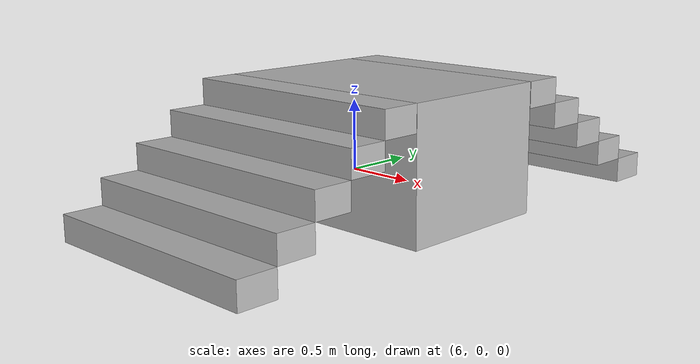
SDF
<sdf version="1.7">
 <world name="example">
  <physics name="4ms" type="dart">
   <max_step_size>0.004</max_step_size>
   <real_time_factor>10</real_time_factor>
   <real_time_update_rate>1000</real_time_update_rate>
  </physics>
  <scene><ambient>0.2 0.2 0.2 1</ambient><background>0.8 0.8 0.8 1</background><shadows>1</shadows></scene>
  <light name="sun" type="directional">
   <pose>0 0 10 0 -0 0</pose>
   <diffuse>0.8 0.8 0.8 1</diffuse>
   <specular>0.8 0.8 0.8 1</specular>
   <attenuation>
    <range>1</range>
    <constant>0.9</constant>
    <linear>1</linear>
    <quadratic>0.001</quadratic>
   </attenuation>
   <direction>0 0 -1</direction>
   <spot><inner_angle>0</inner_angle><outer_angle>0</outer_angle><falloff>0</falloff></spot>
  </light>
  <light name="light1" type="point">
   <pose>0 0 4 0 -0 0</pose>
   <attenuation>
    <range>1000</range>
    <linear>0</linear>
    <constant>0.1</constant>
    <quadratic>0.005</quadratic>
   </attenuation>
   <diffuse>0.8 0.8 0.8 1</diffuse>
   <specular>0.8 0.8 0.8 1</specular>
   <spot><inner_angle>5</inner_angle><outer_angle>10.1</outer_angle><falloff>0.1</falloff></spot>
   <direction>0 0 -1</direction>
  </light>
  <light name="light2" type="spot">
   <pose>0 0 4 0 -0 0</pose>
   <attenuation>
    <range>1000</range>
    <linear>0.1</linear>
    <constant>0.2</constant>
    <quadratic>0.005</quadratic>
   </attenuation>
   <diffuse>0.8 0.8 0.5 1</diffuse>
   <specular>0.8 0.8 0.5 1</specular>
   <spot><inner_angle>5</inner_angle><outer_angle>10.1</outer_angle><falloff>0.1</falloff></spot>
   <direction>0 0 -1</direction>
  </light>
  <gravity>0 0 -9.8</gravity>
  <magnetic_field>6e-06 2.3e-05 -4.2e-05</magnetic_field>
  <atmosphere type="adiabatic"/>
  <plugin name="__default__" filename="__default__"/>
  <model name="stairs_updown">
   <pose>6.79472 -0.530895 0 0 -0 0</pose>
   <link name="Stairs_2">
    <visual name="Stairs_2_Visual_0">
     <pose>0.001875 1.61963 0.08 0 -0 0</pose>
     <geometry><box><size>1.5 0.26 0.16</size></box></geometry>
     <meta><layer>0</layer></meta>
     <plugin name="__default__" filename="__default__"/>
    </visual>
    <collision name="Stairs_2_Collision_0">
     <geometry><box><size>1.5 0.26 0.16</size></box></geometry>
     <pose>0.001875 1.61963 0.08 0 -0 0</pose>
    </collision>
    <visual name="Stairs_2_Visual_1">
     <pose>0.001875 1.35963 0.24 0 -0 0</pose>
     <geometry><box><size>1.5 0.26 0.16</size></box></geometry>
     <meta><layer>0</layer></meta>
     <plugin name="__default__" filename="__default__"/>
    </visual>
    <collision name="Stairs_2_Collision_1">
     <geometry><box><size>1.5 0.26 0.16</size></box></geometry>
     <pose>0.001875 1.35963 0.24 0 -0 0</pose>
    </collision>
    <visual name="Stairs_2_Visual_2">
     <pose>0.001875 1.09963 0.4 0 -0 0</pose>
     <geometry><box><size>1.5 0.26 0.16</size></box></geometry>
     <meta><layer>0</layer></meta>
     <plugin name="__default__" filename="__default__"/>
    </visual>
    <collision name="Stairs_2_Collision_2">
     <geometry><box><size>1.5 0.26 0.16</size></box></geometry>
     <pose>0.001875 1.09963 0.4 0 -0 0</pose>
    </collision>
    <visual name="Stairs_2_Visual_3">
     <pose>0.001875 0.839625 0.56 0 -0 0</pose>
     <geometry><box><size>1.5 0.26 0.16</size></box></geometry>
     <meta><layer>0</layer></meta>
     <plugin name="__default__" filename="__default__"/>
    </visual>
    <collision name="Stairs_2_Collision_3">
     <geometry><box><size>1.5 0.26 0.16</size></box></geometry>
     <pose>0.001875 0.839625 0.56 0 -0 0</pose>
    </collision>
    <visual name="Stairs_2_Visual_4">
     <pose>0.001875 0.579625 0.72 0 -0 0</pose>
     <geometry><box><size>1.5 0.26 0.16</size></box></geometry>
     <meta><layer>0</layer></meta>
     <plugin name="__default__" filename="__default__"/>
    </visual>
    <collision name="Stairs_2_Collision_4">
     <geometry><box><size>1.5 0.26 0.16</size></box></geometry>
     <pose>0.001875 0.579625 0.72 0 -0 0</pose>
    </collision>
   </link>
   <link name="Stairs_4">
    <visual name="Stairs_4_Visual_0">
     <pose>-0.001125 -0.050375 0.4 0 -0 0</pose>
     <geometry><box><size>1.5 1 0.8</size></box></geometry>
     <meta><layer>0</layer></meta>
     <plugin name="__default__" filename="__default__"/>
    </visual>
    <collision name="Stairs_4_Collision_0">
     <geometry><box><size>1.5 1 0.8</size></box></geometry>
     <pose>-0.001125 -0.050375 0.4 0 -0 0</pose>
    </collision>
   </link>
   <link name="Stairs_7">
    <visual name="Stairs_7_Visual_0">
     <pose>-0.001875 -1.62963 0.08 0 -0 -3.14159</pose>
     <geometry><box><size>1.5 0.24 0.16</size></box></geometry>
     <meta><layer>0</layer></meta>
     <plugin name="__default__" filename="__default__"/>
    </visual>
    <collision name="Stairs_7_Collision_0">
     <geometry><box><size>1.5 0.24 0.16</size></box></geometry>
     <pose>-0.001875 -1.62963 0.08 0 -0 -3.14159</pose>
    </collision>
    <visual name="Stairs_7_Visual_1">
     <pose>-0.001875 -1.38963 0.24 0 -0 -3.14159</pose>
     <geometry><box><size>1.5 0.24 0.16</size></box></geometry>
     <meta><layer>0</layer></meta>
     <plugin name="__default__" filename="__default__"/>
    </visual>
    <collision name="Stairs_7_Collision_1">
     <geometry><box><size>1.5 0.24 0.16</size></box></geometry>
     <pose>-0.001875 -1.38963 0.24 0 -0 -3.14159</pose>
    </collision>
    <visual name="Stairs_7_Visual_2">
     <pose>-0.001875 -1.14962 0.4 0 -0 -3.14159</pose>
     <geometry><box><size>1.5 0.24 0.16</size></box></geometry>
     <meta><layer>0</layer></meta>
     <plugin name="__default__" filename="__default__"/>
    </visual>
    <collision name="Stairs_7_Collision_2">
     <geometry><box><size>1.5 0.24 0.16</size></box></geometry>
     <pose>-0.001875 -1.14962 0.4 0 -0 -3.14159</pose>
    </collision>
    <visual name="Stairs_7_Visual_3">
     <pose>-0.001875 -0.909625 0.56 0 -0 -3.14159</pose>
     <geometry><box><size>1.5 0.24 0.16</size></box></geometry>
     <meta><layer>0</layer></meta>
     <plugin name="__default__" filename="__default__"/>
    </visual>
    <collision name="Stairs_7_Collision_3">
     <geometry><box><size>1.5 0.24 0.16</size></box></geometry>
     <pose>-0.001875 -0.909625 0.56 0 -0 -3.14159</pose>
    </collision>
    <visual name="Stairs_7_Visual_4">
     <pose>-0.001875 -0.669625 0.72 0 -0 -3.14159</pose>
     <geometry><box><size>1.5 0.24 0.16</size></box></geometry>
     <meta><layer>0</layer></meta>
     <plugin name="__default__" filename="__default__"/>
    </visual>
    <collision name="Stairs_7_Collision_4">
     <geometry><box><size>1.5 0.24 0.16</size></box></geometry>
     <pose>-0.001875 -0.669625 0.72 0 -0 -3.14159</pose>
    </collision>
   </link>
   <static>1</static>
   <plugin name="__default__" filename="__default__"/>
  </model>
 </world>
</sdf>
